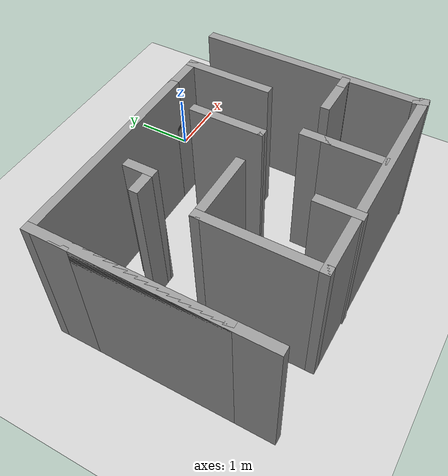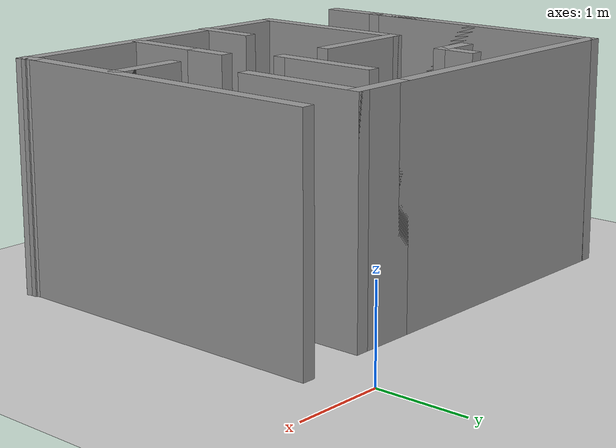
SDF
<sdf version="1.7">
 <world name="default">
  <light name="sun" type="directional">
   <pose>0 0 10 0 -0 0</pose>
   <diffuse>0.8 0.8 0.8 1</diffuse>
   <specular>0.2 0.2 0.2 1</specular>
   <attenuation>
    <range>1000</range>
    <constant>0.9</constant>
    <linear>0.01</linear>
    <quadratic>0.001</quadratic>
   </attenuation>
   <direction>-0.5 0.1 -0.9</direction>
   <spot><inner_angle>0</inner_angle><outer_angle>0</outer_angle><falloff>0</falloff></spot>
  </light>
  <model name="ground_plane">
   <static>1</static>
   <link name="link">
    <collision name="collision">
     <geometry><plane><normal>0 0 1</normal><size>100 100</size></plane></geometry>
     <surface>
      <contact><collide_bitmask>65535</collide_bitmask></contact>
      <friction><ode><mu>100</mu><mu2>50</mu2></ode></friction>
     </surface>
    </collision>
    <visual name="visual">
     <cast_shadows>0</cast_shadows>
     <geometry><plane><normal>0 0 1</normal><size>100 100</size></plane></geometry>
     <material>
      <script><uri>file://media/materials/scripts/gazebo.material</uri><name>Gazebo/Grey</name></script>
     </material>
    </visual>
   </link>
  </model>
  <gravity>0 0 -9.8</gravity>
  <magnetic_field>6e-06 2.3e-05 -4.2e-05</magnetic_field>
  <atmosphere type="adiabatic"/>
  <physics type="ode">
   <max_step_size>0.001</max_step_size>
   <real_time_factor>1</real_time_factor>
   <real_time_update_rate>1000</real_time_update_rate>
  </physics>
  <scene><ambient>0.4 0.4 0.4 1</ambient><background>0.7 0.7 0.7 1</background><shadows>1</shadows></scene>
  <spherical_coordinates>
   <surface_model>EARTH_WGS84</surface_model>
   <latitude_deg>0</latitude_deg>
   <longitude_deg>0</longitude_deg>
   <elevation>0</elevation>
   <heading_deg>0</heading_deg>
  </spherical_coordinates>
  <model name="maze">
   <pose>-2.11907 -2.21119 0 0 -0 0</pose>
   <link name="Wall_0">
    <collision name="Wall_0_Collision">
     <geometry><box><size>2.5 0.15 2.5</size></box></geometry>
     <pose>0 0 1.25 0 -0 0</pose>
    </collision>
    <visual name="Wall_0_Visual">
     <pose>0 0 1.25 0 -0 0</pose>
     <geometry><box><size>2.5 0.15 2.5</size></box></geometry>
     <material>
      <script><uri>file://media/materials/scripts/gazebo.material</uri><name>Gazebo/Grey</name></script>
      <ambient>1 1 1 1</ambient>
     </material>
     <meta><layer>0</layer></meta>
    </visual>
    <pose>-2.42093 -0.273809 0 0 -0 -1.5708</pose>
   </link>
   <link name="Wall_1">
    <collision name="Wall_1_Collision">
     <geometry><box><size>0.15 0.15 2.5</size></box></geometry>
     <pose>0 0 1.25 0 -0 0</pose>
    </collision>
    <visual name="Wall_1_Visual">
     <pose>0 0 1.25 0 -0 0</pose>
     <geometry><box><size>0.15 0.15 2.5</size></box></geometry>
     <material>
      <script><uri>file://media/materials/scripts/gazebo.material</uri><name>Gazebo/Grey</name></script>
      <ambient>1 1 1 1</ambient>
     </material>
     <meta><layer>0</layer></meta>
    </visual>
    <pose>-2.42093 -1.44881 0 0 -0 0</pose>
   </link>
   <link name="Wall_10">
    <collision name="Wall_10_Collision">
     <geometry><box><size>3.75 0.15 2.5</size></box></geometry>
     <pose>0 0 1.25 0 -0 0</pose>
    </collision>
    <visual name="Wall_10_Visual">
     <pose>0 0 1.25 0 -0 0</pose>
     <geometry><box><size>3.75 0.15 2.5</size></box></geometry>
     <material>
      <script><uri>file://media/materials/scripts/gazebo.material</uri><name>Gazebo/Grey</name></script>
      <ambient>1 1 1 1</ambient>
     </material>
     <meta><layer>0</layer></meta>
    </visual>
    <pose>0.604076 -2.11258 0 0 -0 3.14159</pose>
   </link>
   <link name="Wall_11">
    <collision name="Wall_11_Collision">
     <geometry><box><size>2 0.15 2.5</size></box></geometry>
     <pose>0 0 1.25 0 -0 0</pose>
    </collision>
    <visual name="Wall_11_Visual">
     <pose>0 0 1.25 0 -0 0</pose>
     <geometry><box><size>2 0.15 2.5</size></box></geometry>
     <material>
      <script><uri>file://media/materials/scripts/gazebo.material</uri><name>Gazebo/Grey</name></script>
      <ambient>1 1 1 1</ambient>
     </material>
     <meta><layer>0</layer></meta>
    </visual>
    <pose>-1.19592 -1.18758 0 0 -0 1.5708</pose>
   </link>
   <link name="Wall_12">
    <collision name="Wall_12_Collision">
     <geometry><box><size>1.25 0.15 2.5</size></box></geometry>
     <pose>0 0 1.25 0 -0 0</pose>
    </collision>
    <visual name="Wall_12_Visual">
     <pose>0 0 1.25 0 -0 0</pose>
     <geometry><box><size>1.25 0.15 2.5</size></box></geometry>
     <material>
      <script><uri>file://media/materials/scripts/gazebo.material</uri><name>Gazebo/Grey</name></script>
      <ambient>1 1 1 1</ambient>
     </material>
     <meta><layer>0</layer></meta>
    </visual>
    <pose>-0.645924 -0.26258 0 0 -0 0</pose>
   </link>
   <link name="Wall_14">
    <collision name="Wall_14_Collision">
     <geometry><box><size>0.75 0.15 2.5</size></box></geometry>
     <pose>0 0 1.25 0 -0 0</pose>
    </collision>
    <visual name="Wall_14_Visual">
     <pose>0 0 1.25 0 -0 0</pose>
     <geometry><box><size>0.75 0.15 2.5</size></box></geometry>
     <material>
      <script><uri>file://media/materials/scripts/gazebo.material</uri><name>Gazebo/Grey</name></script>
      <ambient>1 1 1 1</ambient>
     </material>
     <meta><layer>0</layer></meta>
    </visual>
    <pose>-0.191385 -1.83619 0 0 -0 -1.5708</pose>
   </link>
   <link name="Wall_16">
    <collision name="Wall_16_Collision">
     <geometry><box><size>1 0.15 2.5</size></box></geometry>
     <pose>0 0 1.25 0 -0 0</pose>
    </collision>
    <visual name="Wall_16_Visual">
     <pose>0 0 1.25 0 -0 0</pose>
     <geometry><box><size>1 0.15 2.5</size></box></geometry>
     <material>
      <script><uri>file://media/materials/scripts/gazebo.material</uri><name>Gazebo/Grey</name></script>
      <ambient>1 1 1 1</ambient>
     </material>
     <meta><layer>0</layer></meta>
    </visual>
    <pose>0.909863 -1.60063 0 0 -0 1.5708</pose>
   </link>
   <link name="Wall_17">
    <collision name="Wall_17_Collision">
     <geometry><box><size>0.5 0.15 2.5</size></box></geometry>
     <pose>0 0 1.25 0 -0 0</pose>
    </collision>
    <visual name="Wall_17_Visual">
     <pose>0 0 1.25 0 -0 0</pose>
     <geometry><box><size>0.5 0.15 2.5</size></box></geometry>
     <material>
      <script><uri>file://media/materials/scripts/gazebo.material</uri><name>Gazebo/Grey</name></script>
      <ambient>1 1 1 1</ambient>
     </material>
     <meta><layer>0</layer></meta>
    </visual>
    <pose>0.909863 -1.00063 0 0 -0 1.5708</pose>
   </link>
   <link name="Wall_19">
    <collision name="Wall_19_Collision">
     <geometry><box><size>0.5 0.15 2.5</size></box></geometry>
     <pose>0 0 1.25 0 -0 0</pose>
    </collision>
    <visual name="Wall_19_Visual">
     <pose>0 0 1.25 0 -0 0</pose>
     <geometry><box><size>0.5 0.15 2.5</size></box></geometry>
     <material>
      <script><uri>file://media/materials/scripts/gazebo.material</uri><name>Gazebo/Grey</name></script>
      <ambient>1 1 1 1</ambient>
     </material>
     <meta><layer>0</layer></meta>
    </visual>
    <pose>-1.02586 0.696896 0 0 -0 0</pose>
   </link>
   <link name="Wall_20">
    <collision name="Wall_20_Collision">
     <geometry><box><size>0.5 0.15 2.5</size></box></geometry>
     <pose>0 0 1.25 0 -0 0</pose>
    </collision>
    <visual name="Wall_20_Visual">
     <pose>0 0 1.25 0 -0 0</pose>
     <geometry><box><size>0.5 0.15 2.5</size></box></geometry>
     <material>
      <script><uri>file://media/materials/scripts/gazebo.material</uri><name>Gazebo/Grey</name></script>
      <ambient>1 1 1 1</ambient>
     </material>
     <meta><layer>0</layer></meta>
    </visual>
    <pose>-0.850863 0.871896 0 0 -0 1.5708</pose>
   </link>
   <link name="Wall_22">
    <collision name="Wall_22_Collision">
     <geometry><box><size>1.25 0.15 2.5</size></box></geometry>
     <pose>0 0 1.25 0 -0 0</pose>
    </collision>
    <visual name="Wall_22_Visual">
     <pose>0 0 1.25 0 -0 0</pose>
     <geometry><box><size>1.25 0.15 2.5</size></box></geometry>
     <material>
      <script><uri>file://media/materials/scripts/gazebo.material</uri><name>Gazebo/Grey</name></script>
      <ambient>1 1 1 1</ambient>
     </material>
     <meta><layer>0</layer></meta>
    </visual>
    <pose>0.602693 0.311949 0 0 -0 -1.5708</pose>
   </link>
   <link name="Wall_23">
    <collision name="Wall_23_Collision">
     <geometry><box><size>0.15 0.15 2.5</size></box></geometry>
     <pose>0 0 1.25 0 -0 0</pose>
    </collision>
    <visual name="Wall_23_Visual">
     <pose>0 0 1.25 0 -0 0</pose>
     <geometry><box><size>0.15 0.15 2.5</size></box></geometry>
     <material>
      <script><uri>file://media/materials/scripts/gazebo.material</uri><name>Gazebo/Grey</name></script>
      <ambient>1 1 1 1</ambient>
     </material>
     <meta><layer>0</layer></meta>
    </visual>
    <pose>0.602693 -0.238051 0 0 -0 0</pose>
   </link>
   <link name="Wall_26">
    <collision name="Wall_26_Collision">
     <geometry><box><size>0.75 0.15 2.5</size></box></geometry>
     <pose>0 0 1.25 0 -0 0</pose>
    </collision>
    <visual name="Wall_26_Visual">
     <pose>0 0 1.25 0 -0 0</pose>
     <geometry><box><size>0.75 0.15 2.5</size></box></geometry>
     <material>
      <script><uri>file://media/materials/scripts/gazebo.material</uri><name>Gazebo/Grey</name></script>
      <ambient>1 1 1 1</ambient>
     </material>
     <meta><layer>0</layer></meta>
    </visual>
    <pose>1.22907 1.50119 0 0 -0 0</pose>
   </link>
   <link name="Wall_27">
    <collision name="Wall_27_Collision">
     <geometry><box><size>1.5 0.15 2.5</size></box></geometry>
     <pose>0 0 1.25 0 -0 0</pose>
    </collision>
    <visual name="Wall_27_Visual">
     <pose>0 0 1.25 0 -0 0</pose>
     <geometry><box><size>1.5 0.15 2.5</size></box></geometry>
     <material>
      <script><uri>file://media/materials/scripts/gazebo.material</uri><name>Gazebo/Grey</name></script>
      <ambient>1 1 1 1</ambient>
     </material>
     <meta><layer>0</layer></meta>
    </visual>
    <pose>1.52907 0.826191 0 0 -0 -1.5708</pose>
   </link>
   <link name="Wall_29">
    <collision name="Wall_29_Collision">
     <geometry><box><size>0.75 0.15 2.5</size></box></geometry>
     <pose>0 0 1.25 0 -0 0</pose>
    </collision>
    <visual name="Wall_29_Visual">
     <pose>0 0 1.25 0 -0 0</pose>
     <geometry><box><size>0.75 0.15 2.5</size></box></geometry>
     <material>
      <script><uri>file://media/materials/scripts/gazebo.material</uri><name>Gazebo/Grey</name></script>
      <ambient>1 1 1 1</ambient>
     </material>
     <meta><layer>0</layer></meta>
    </visual>
    <pose>1.90968 -0.847612 0 0 -0 0</pose>
   </link>
   <link name="Wall_3">
    <collision name="Wall_3_Collision">
     <geometry><box><size>0.75 0.15 2.5</size></box></geometry>
     <pose>0 0 1.25 0 -0 0</pose>
    </collision>
    <visual name="Wall_3_Visual">
     <pose>0 0 1.25 0 -0 0</pose>
     <geometry><box><size>0.75 0.15 2.5</size></box></geometry>
     <material>
      <script><uri>file://media/materials/scripts/gazebo.material</uri><name>Gazebo/Grey</name></script>
      <ambient>1 1 1 1</ambient>
     </material>
     <meta><layer>0</layer></meta>
    </visual>
    <pose>-2.42093 1.20119 0 0 -0 1.5708</pose>
   </link>
   <link name="Wall_30">
    <collision name="Wall_30_Collision">
     <geometry><box><size>0.25 0.15 2.5</size></box></geometry>
     <pose>0 0 1.25 0 -0 0</pose>
    </collision>
    <visual name="Wall_30_Visual">
     <pose>0 0 1.25 0 -0 0</pose>
     <geometry><box><size>0.25 0.15 2.5</size></box></geometry>
     <material>
      <script><uri>file://media/materials/scripts/gazebo.material</uri><name>Gazebo/Grey</name></script>
      <ambient>1 1 1 1</ambient>
     </material>
     <meta><layer>0</layer></meta>
    </visual>
    <pose>2.25968 -0.847612 0 0 -0 0</pose>
   </link>
   <link name="Wall_4">
    <collision name="Wall_4_Collision">
     <geometry><box><size>3.75 0.15 2.5</size></box></geometry>
     <pose>0 0 1.25 0 -0 0</pose>
    </collision>
    <visual name="Wall_4_Visual">
     <pose>0 0 1.25 0 -0 0</pose>
     <geometry><box><size>3.75 0.15 2.5</size></box></geometry>
     <material>
      <script><uri>file://media/materials/scripts/gazebo.material</uri><name>Gazebo/Grey</name></script>
      <ambient>1 1 1 1</ambient>
     </material>
     <meta><layer>0</layer></meta>
    </visual>
    <pose>-2.42093 -0.298809 0 0 -0 -1.5708</pose>
   </link>
   <link name="Wall_6">
    <collision name="Wall_6_Collision">
     <geometry><box><size>3.5 0.15 2.5</size></box></geometry>
     <pose>0 0 1.25 0 -0 0</pose>
    </collision>
    <visual name="Wall_6_Visual">
     <pose>0 0 1.25 0 -0 0</pose>
     <geometry><box><size>3.5 0.15 2.5</size></box></geometry>
     <material>
      <script><uri>file://media/materials/scripts/gazebo.material</uri><name>Gazebo/Grey</name></script>
      <ambient>1 1 1 1</ambient>
     </material>
     <meta><layer>0</layer></meta>
    </visual>
    <pose>-0.745932 1.50119 0 0 -0 0</pose>
   </link>
   <link name="Wall_8">
    <collision name="Wall_8_Collision">
     <geometry><box><size>3.75 0.15 2.5</size></box></geometry>
     <pose>0 0 1.25 0 -0 0</pose>
    </collision>
    <visual name="Wall_8_Visual">
     <pose>0 0 1.25 0 -0 0</pose>
     <geometry><box><size>3.75 0.15 2.5</size></box></geometry>
     <material>
      <script><uri>file://media/materials/scripts/gazebo.material</uri><name>Gazebo/Grey</name></script>
      <ambient>1 1 1 1</ambient>
     </material>
     <meta><layer>0</layer></meta>
    </visual>
    <pose>2.37819 -0.215987 0 0 -0 -1.5708</pose>
   </link>
   <link name="Wall_9">
    <collision name="Wall_9_Collision">
     <geometry><box><size>0.25 0.15 2.5</size></box></geometry>
     <pose>0 0 1.25 0 -0 0</pose>
    </collision>
    <visual name="Wall_9_Visual">
     <pose>0 0 1.25 0 -0 0</pose>
     <geometry><box><size>0.25 0.15 2.5</size></box></geometry>
     <material>
      <script><uri>file://media/materials/scripts/gazebo.material</uri><name>Gazebo/Grey</name></script>
      <ambient>1 1 1 1</ambient>
     </material>
     <meta><layer>0</layer></meta>
    </visual>
    <pose>2.39113 -2.06428 0 0 -0 -1.309</pose>
   </link>
   <static>1</static>
  </model>
 </world>
</sdf>
